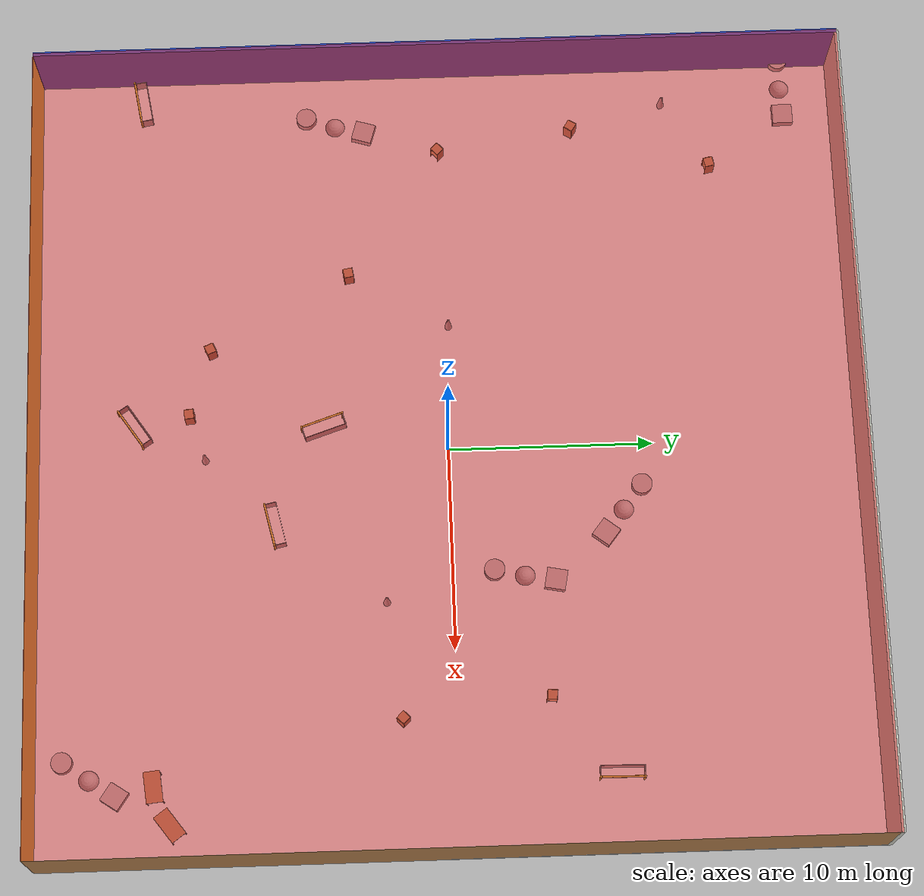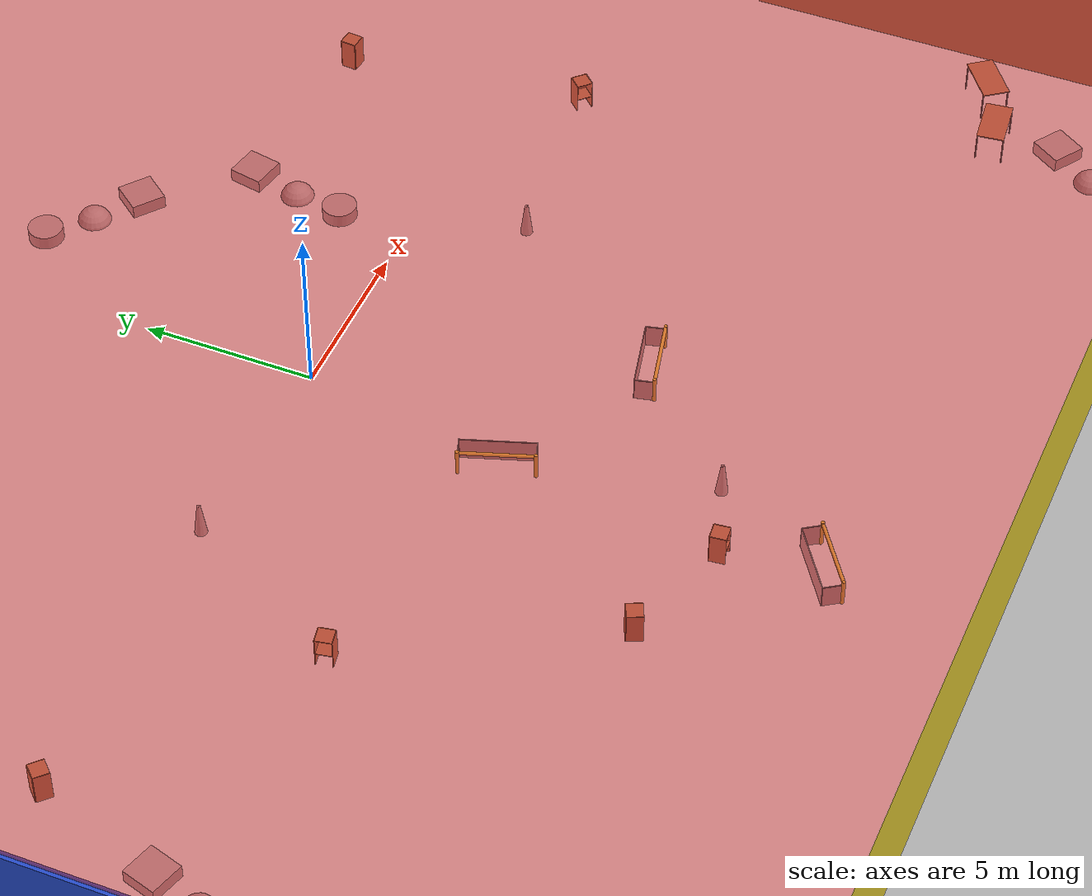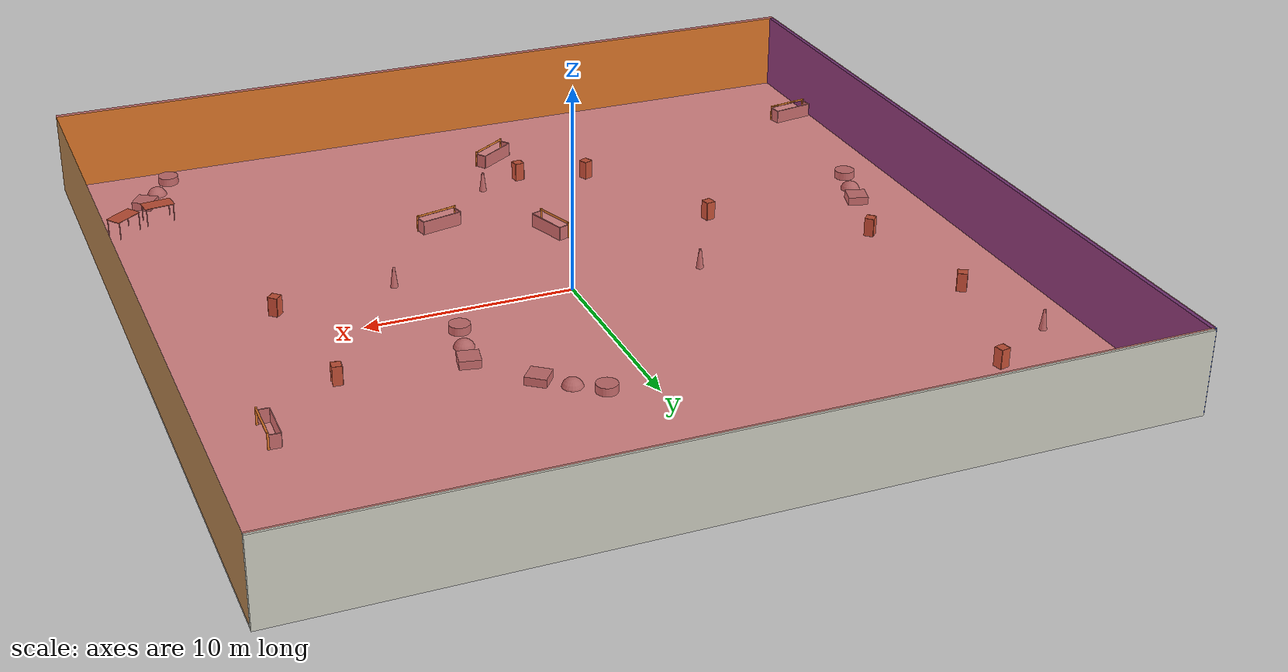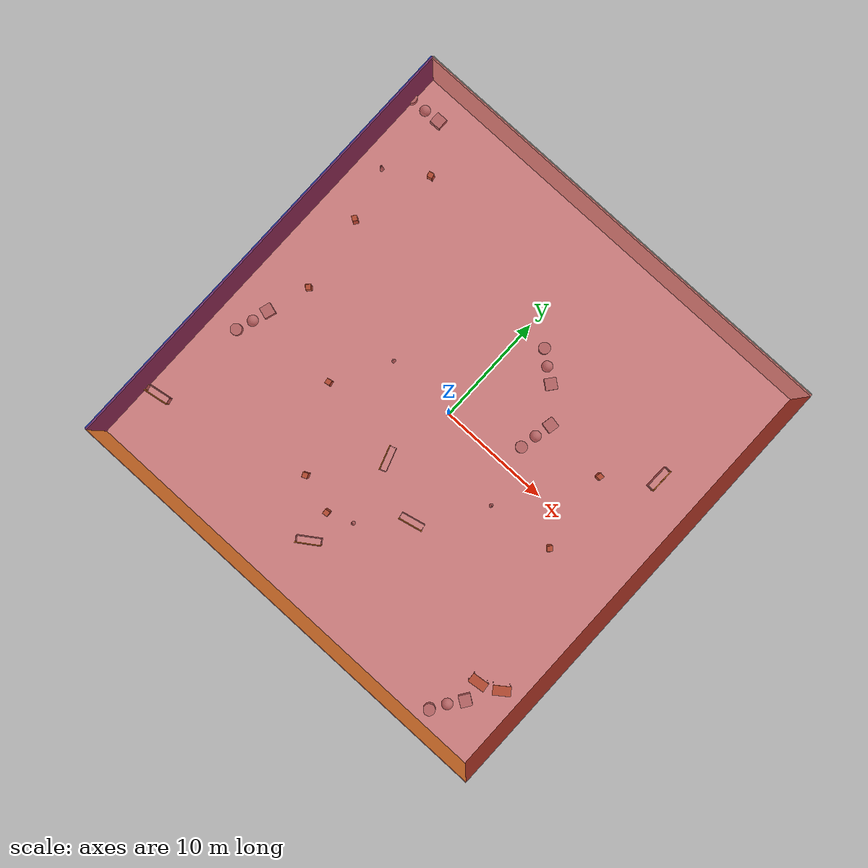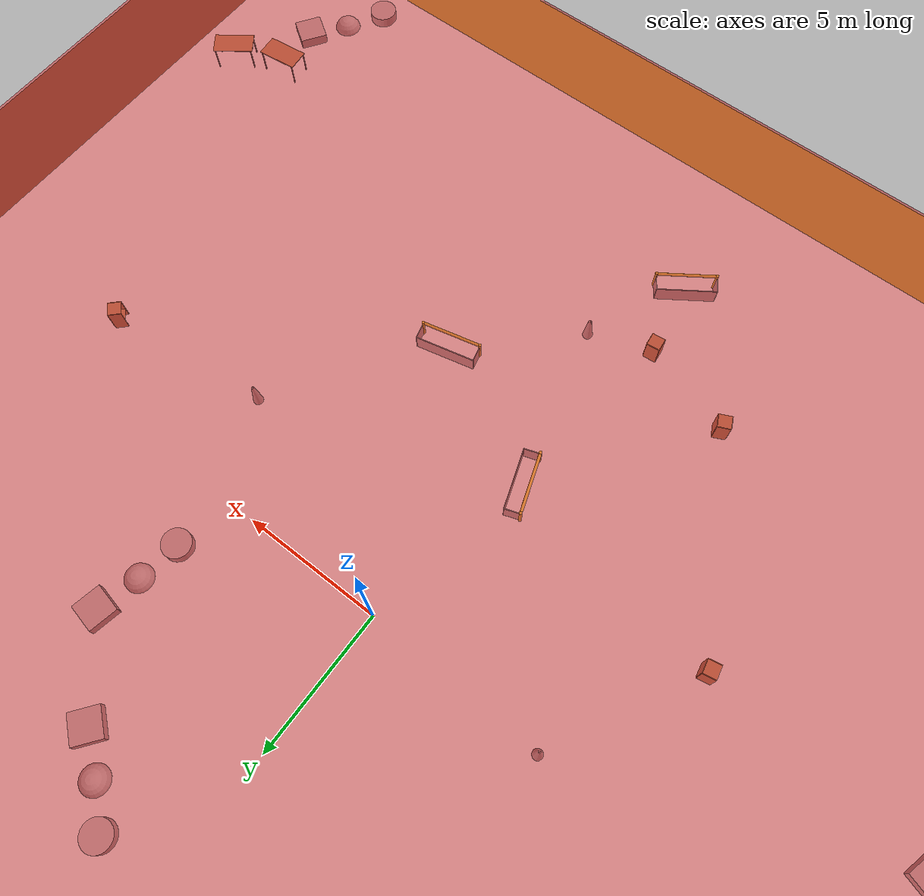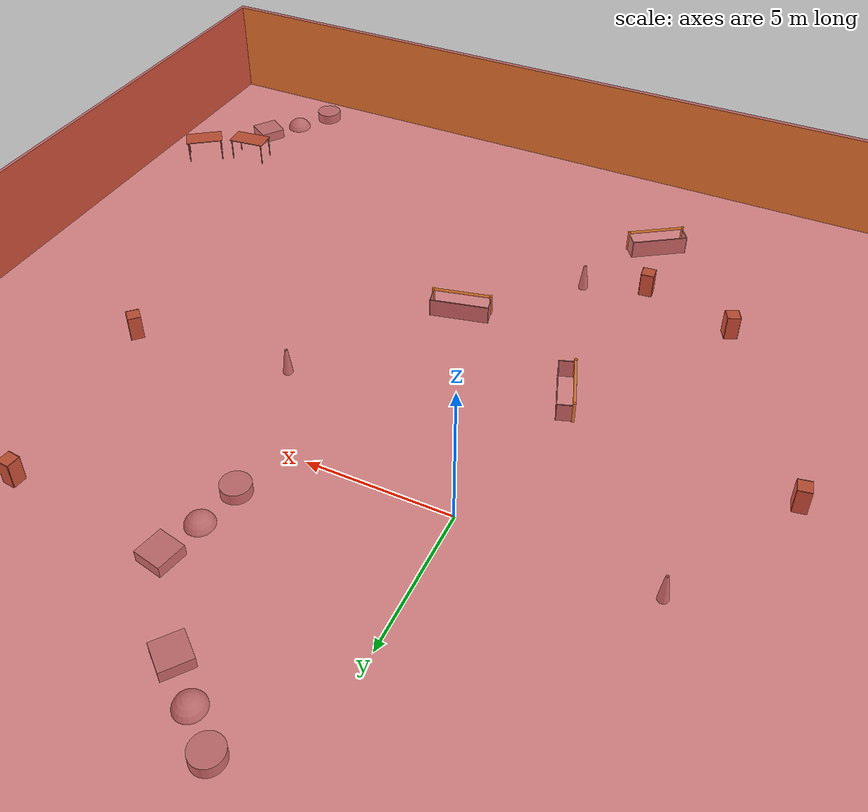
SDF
<sdf version="1.4">
 <world name="default">
  <physics type="ode">
   <max_step_size>0.001</max_step_size>
   <real_time_factor>1</real_time_factor>
   <real_time_update_rate>1000</real_time_update_rate>
   <gravity>0 0 -9.8</gravity>
  </physics>
  <scene><ambient>0.4 0.4 0.4 1</ambient><background>0.7 0.7 0.7 1</background><shadows>1</shadows></scene>
  <model name="Surrounding">
   <static>1</static>
   <link name="Ceiling">
    <collision name="Ceiling_Collision"><geometry><box><size>40 40 0.1</size></box></geometry></collision>
    <visual name="Ceiling_Visual">
     <geometry><box><size>40 40 0.1</size></box></geometry>
     <material>
      <script><uri>file://media/materials/scripts/gazebo.material</uri><name>Gazebo/RedTransparent</name></script>
     </material>
    </visual>
    <pose>0 0 4.05 0 0 0</pose>
   </link>
   <link name="Wall_South">
    <collision name="Wall_South_Collision">
     <geometry><box><size>40 0 4</size></box></geometry>
     <pose>0 0 2 0 -0 0</pose>
    </collision>
    <visual name="Wall_South_Visual">
     <pose>0 0 2 0 -0 0</pose>
     <geometry><box><size>40 0 4</size></box></geometry>
     <material>
      <script><uri>file://media/materials/scripts/gazebo.material</uri><name>Gazebo/ZincYellow</name></script>
     </material>
    </visual>
    <velocity_decay><linear>0</linear><angular>0</angular></velocity_decay>
    <pose>0 -20 0 0 -0 0</pose>
   </link>
   <link name="Wall_East">
    <collision name="Wall_21_Collision">
     <geometry><box><size>40 0 4</size></box></geometry>
     <pose>0 0 2 0 -0 0</pose>
    </collision>
    <visual name="Wall_21_Visual">
     <pose>0 0 2 0 -0 0</pose>
     <geometry><box><size>40 0 4</size></box></geometry>
     <material>
      <script><uri>file://media/materials/scripts/gazebo.material</uri><name>Gazebo/WoodFloor</name></script>
     </material>
    </visual>
    <velocity_decay><linear>0</linear><angular>0</angular></velocity_decay>
    <pose>20 0 0 0 -0 1.5708</pose>
   </link>
   <link name="Wall_North">
    <collision name="Wall_22_Collision">
     <geometry><box><size>40 0.2 4</size></box></geometry>
     <pose>0 0 2 0 -0 0</pose>
    </collision>
    <visual name="Wall_22_Visual">
     <pose>0 0 2 0 -0 0</pose>
     <geometry><box><size>40 0.2 4</size></box></geometry>
     <material>
      <script><uri>file://media/materials/scripts/gazebo.material</uri><name>Gazebo/PaintedWall</name></script>
     </material>
    </visual>
    <velocity_decay><linear>0</linear><angular>0</angular></velocity_decay>
    <pose>0 20 0 0 -0 0</pose>
   </link>
   <link name="Wall_West">
    <collision name="Wall_23_Collision">
     <geometry><box><size>40 0.2 4</size></box></geometry>
     <pose>0 0 2 0 -0 0</pose>
    </collision>
    <visual name="Wall_23_Visual">
     <pose>0 0 2 0 -0 0</pose>
     <geometry><box><size>40 0.2 4</size></box></geometry>
     <material>
      <script><uri>file://media/materials/scripts/gazebo.material</uri><name>Gazebo/BlueLaser</name></script>
     </material>
    </visual>
    <velocity_decay><linear>0</linear><angular>0</angular></velocity_decay>
    <pose>-20 0 0 0 0 -1.5708</pose>
   </link>
   <link name="Ground_link">
    <collision name="collision">
     <pose>0 0 .05 0 -0 0</pose>
     <geometry><box><size>40 40 0.1</size></box></geometry>
    </collision>
    <visual name="visual">
     <pose>0 0 .05 0 -0 0</pose>
     <geometry><box><size>40 40 0.1</size></box></geometry>
     <material>
      <script><uri>file://media/materials/scripts/gazebo.material</uri><name>Gazebo/WhiteGlow</name></script>
     </material>
    </visual>
   </link>
   <static>1</static>
  </model>
  <spherical_coordinates>
   <surface_model>EARTH_WGS84</surface_model>
   <latitude_deg>0</latitude_deg>
   <longitude_deg>0</longitude_deg>
   <elevation>0</elevation>
   <heading_deg>0</heading_deg>
  </spherical_coordinates>
  <light name="lightball_0" type="diffuse">
   <diffuse>0.8 0.8 0.8 1</diffuse>
   <specular>0.2 0.2 0.2 1</specular>
   <attenuation>
    <range>100</range>
    <constant>0.7</constant>
    <linear>0.01</linear>
    <quadratic>0.001</quadratic>
   </attenuation>
   <direction>-0.5 0.1 -0.9</direction>
   <pose>16.2331982939 8.82134884089 3.58650402741 0 0 0</pose>
  </light>
  <light name="lightball_1" type="diffuse">
   <diffuse>0.8 0.8 0.8 1</diffuse>
   <specular>0.2 0.2 0.2 1</specular>
   <attenuation>
    <range>100</range>
    <constant>0.7</constant>
    <linear>0.01</linear>
    <quadratic>0.001</quadratic>
   </attenuation>
   <direction>-0.5 0.1 -0.9</direction>
   <pose>-19.0423789964 -5.8036923309 1.55619270486 0 0 0</pose>
  </light>
  <light name="lightball_2" type="diffuse">
   <diffuse>0.8 0.8 0.8 1</diffuse>
   <specular>0.2 0.2 0.2 1</specular>
   <attenuation>
    <range>100</range>
    <constant>0.7</constant>
    <linear>0.01</linear>
    <quadratic>0.001</quadratic>
   </attenuation>
   <direction>-0.5 0.1 -0.9</direction>
   <pose>1.83686935047 14.155686116 0.729416375774 0 0 0</pose>
  </light>
  <light name="lightball_3" type="diffuse">
   <diffuse>0.8 0.8 0.8 1</diffuse>
   <specular>0.2 0.2 0.2 1</specular>
   <attenuation>
    <range>100</range>
    <constant>0.7</constant>
    <linear>0.01</linear>
    <quadratic>0.001</quadratic>
   </attenuation>
   <direction>-0.5 0.1 -0.9</direction>
   <pose>5.70343289704 2.31511679044 2.3474675816 0 0 0</pose>
  </light>
  <light name="lightball_4" type="diffuse">
   <diffuse>0.8 0.8 0.8 1</diffuse>
   <specular>0.2 0.2 0.2 1</specular>
   <attenuation>
    <range>100</range>
    <constant>0.7</constant>
    <linear>0.01</linear>
    <quadratic>0.001</quadratic>
   </attenuation>
   <direction>-0.5 0.1 -0.9</direction>
   <pose>-1.48559429583 -14.7938974724 3.38108705653 0 0 0</pose>
  </light>
  <light name="lightball_5" type="diffuse">
   <diffuse>0.8 0.8 0.8 1</diffuse>
   <specular>0.2 0.2 0.2 1</specular>
   <attenuation>
    <range>100</range>
    <constant>0.7</constant>
    <linear>0.01</linear>
    <quadratic>0.001</quadratic>
   </attenuation>
   <direction>-0.5 0.1 -0.9</direction>
   <pose>5.93366376017 -10.1948642873 0.56612159946 0 0 0</pose>
  </light>
  <light name="lightball_6" type="diffuse">
   <diffuse>0.8 0.8 0.8 1</diffuse>
   <specular>0.2 0.2 0.2 1</specular>
   <attenuation>
    <range>100</range>
    <constant>0.7</constant>
    <linear>0.01</linear>
    <quadratic>0.001</quadratic>
   </attenuation>
   <direction>-0.5 0.1 -0.9</direction>
   <pose>10.4228973141 9.85975533016 2.29196798313 0 0 0</pose>
  </light>
  <light name="lightball_7" type="diffuse">
   <diffuse>0.8 0.8 0.8 1</diffuse>
   <specular>0.2 0.2 0.2 1</specular>
   <attenuation>
    <range>100</range>
    <constant>0.7</constant>
    <linear>0.01</linear>
    <quadratic>0.001</quadratic>
   </attenuation>
   <direction>-0.5 0.1 -0.9</direction>
   <pose>9.54235159039 -13.2492044285 2.34001517663 0 0 0</pose>
  </light>
  <include>
   <uri>model://robocup_3Dsim_goal</uri>
   <pose>-18.6780701564 -15.1202706325 0 0 0 1.73301093816</pose>
  </include>
  <include>
   <uri>model://textured_shapes</uri>
   <pose>-17.2507434401 -5.19684314362 0 0 0 2.84939603158</pose>
  </include>
  <include><uri>model://cabinet</uri><pose>-16.6000880321 6.68743212599 0 0 0 0.998440170424</pose></include>
  <include>
   <uri>model://construction_cone</uri>
   <pose>-17.9304398462 11.3854844847 0 0 0 2.88174853983</pose>
  </include>
  <include>
   <uri>model://textured_shapes</uri>
   <pose>-18.6320556686 17.4990674104 0 0 0 1.58786556992</pose>
  </include>
  <include><uri>model://cabinet</uri><pose>-15.5398953373 -0.0685951414971 0 0 0 2.36890484402</pose></include>
  <include><uri>model://cabinet</uri><pose>-14.3954609137 13.5647512635 0 0 0 1.78231994406</pose></include>
  <include><uri>model://cabinet</uri><pose>-9.03083384912 -4.67901966383 0 0 0 0.178955939893</pose></include>
  <include><uri>model://cabinet</uri><pose>-5.26535259837 -11.5444588055 0 0 0 1.99786284022</pose></include>
  <include>
   <uri>model://construction_cone</uri>
   <pose>-6.33901640378 0.19528994615 0 0 0 2.03860230615</pose>
  </include>
  <include>
   <uri>model://robocup_3Dsim_goal</uri>
   <pose>-1.35897750572 -15.4970371807 0 0 0 2.16469642985</pose>
  </include>
  <include><uri>model://cabinet</uri><pose>-1.93447763766 -12.6102761493 0 0 0 1.67066431714</pose></include>
  <include>
   <uri>model://robocup_3Dsim_goal</uri>
   <pose>-1.46888332606 -6.13346444444 0 0 0 0.325468051877</pose>
  </include>
  <include>
   <uri>model://construction_cone</uri>
   <pose>0.236127228769 -11.8699976594 0 0 0 1.13828912993</pose>
  </include>
  <include>
   <uri>model://robocup_3Dsim_goal</uri>
   <pose>3.73749859302 -8.76111612866 0 0 0 1.79553586936</pose>
  </include>
  <include>
   <uri>model://textured_shapes</uri>
   <pose>3.34340340988 8.41801171649 0 0 0 0.909629626804</pose>
  </include>
  <include>
   <uri>model://construction_cone</uri>
   <pose>7.61625480885 -3.19791405114 0 0 0 1.81128874806</pose>
  </include>
  <include>
   <uri>model://textured_shapes</uri>
   <pose>6.49531707224 3.49415691961 0 0 0 2.95046448315</pose>
  </include>
  <include><uri>model://cabinet</uri><pose>13.3855732743 -2.55751899975 0 0 0 0.797917649695</pose></include>
  <include><uri>model://cabinet</uri><pose>12.524058888 4.51347243321 0 0 0 3.04012235403</pose></include>
  <include>
   <uri>model://textured_shapes</uri>
   <pose>15.7578700691 -17.4739828599 0 0 0 2.55067727625</pose>
  </include>
  <include><uri>model://table</uri><pose>16.2964601693 -14.3484415881 0 0 0 0.112094790516</pose></include>
  <include>
   <uri>model://robocup_3Dsim_goal</uri>
   <pose>16.5056828271 7.65720204727 0 0 0 3.12360599093</pose>
  </include>
  <include><uri>model://table</uri><pose>18.1212598221 -13.5728214101 0 0 0 0.639225647162</pose></include>
 </world>
</sdf>

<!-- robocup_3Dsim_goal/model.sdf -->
<sdf version="1.5">
  <model name="robocup_3d_goal">
    <static>true</static>
    <link name="left_post">
      <pose>0 1.05 0.45 0 0 0</pose>
      <collision name="collision">
        <geometry>
          <cylinder>
            <radius>0.05</radius>
            <length>0.9</length>
          </cylinder>
        </geometry>
      </collision>
      <visual name="visual">
        <geometry>
          <cylinder>
            <radius>0.05</radius>
            <length>0.9</length>
          </cylinder>
        </geometry>
        <material>
          <script>
            <uri>file://media/materials/scripts/gazebo.material</uri>
            <name>Gazebo/ZincYellow</name>
          </script>
        </material>
      </visual>
    </link>
    <link name="left_support_horiz_lower">
      <pose>0.30 1.05 0.01 0 0 0</pose>
      <collision name="collision">
        <geometry>
          <box>
            <size>0.50 0.02 0.02</size>
          </box>
        </geometry>
      </collision>
      <visual name="visual">
        <geometry>
          <box>
            <size>0.50 0.02 0.02</size>
          </box>
        </geometry>
        <material>
          <script>
            <uri>file://media/materials/scripts/gazebo.material</uri>
            <name>Gazebo/White</name>
          </script>
        </material>
      </visual>
    </link>
    <link name="left_support_horiz_upper">
      <pose>0.30 1.05 0.79 0 0 0</pose>
      <collision name="collision">
        <geometry>
          <box>
            <size>0.50 0.02 0.02</size>
          </box>
        </geometry>
      </collision>
      <visual name="visual">
        <geometry>
          <box>
            <size>0.50 0.02 0.02</size>
          </box>
        </geometry>
        <material>
          <script>
            <uri>file://media/materials/scripts/gazebo.material</uri>
            <name>Gazebo/White</name>
          </script>
        </material>
      </visual>
    </link>
    <link name="left_support_vertical">
      <pose>0.56 1.05 0.4 0 1.5708 0</pose>
      <collision name="collision">
        <geometry>
          <box>
            <size>0.80 0.02 0.02</size>
          </box>
        </geometry>
      </collision>
      <visual name="visual">
        <geometry>
          <box>
            <size>0.80 0.02 0.02</size>
          </box>
        </geometry>
        <material>
          <script>
            <uri>file://media/materials/scripts/gazebo.material</uri>
            <name>Gazebo/White</name>
          </script>
        </material>
      </visual>
    </link>
    <link name="right_support_horiz_lower">
      <pose>0.30 -1.05 0.01 0 0 0</pose>
      <collision name="collision">
        <geometry>
          <box>
            <size>0.50 0.02 0.02</size>
          </box>
        </geometry>
      </collision>
      <visual name="visual">
        <geometry>
          <box>
            <size>0.50 0.02 0.02</size>
          </box>
        </geometry>
        <material>
          <script>
            <uri>file://media/materials/scripts/gazebo.material</uri>
            <name>Gazebo/White</name>
          </script>
        </material>
      </visual>
    </link>
    <link name="right_support_horiz_upper">
      <pose>0.30 -1.05 0.79 0 0 0</pose>
      <collision name="collision">
        <geometry>
          <box>
            <size>0.50 0.02 0.02</size>
          </box>
        </geometry>
      </collision>
      <visual name="visual">
        <geometry>
          <box>
            <size>0.50 0.02 0.02</size>
          </box>
        </geometry>
        <material>
          <script>
            <uri>file://media/materials/scripts/gazebo.material</uri>
            <name>Gazebo/White</name>
          </script>
        </material>
      </visual>
    </link>
    <link name="right_support_vertical">
      <pose>0.56 -1.05 0.4 0 1.5708 0</pose>
      <collision name="collision">
        <geometry>
          <box>
            <size>0.80 0.02 0.02</size>
          </box>
        </geometry>
      </collision>
      <visual name="visual">
        <geometry>
          <box>
            <size>0.80 0.02 0.02</size>
          </box>
        </geometry>
        <material>
          <script>
            <uri>file://media/materials/scripts/gazebo.material</uri>
            <name>Gazebo/White</name>
          </script>
        </material>
      </visual>
    </link>
    <link name="center_support_horiz_lower">
      <pose>0.56 0 0.01 0 1.5708 0</pose>
      <collision name="collision">
        <geometry>
          <box>
            <size>0.02 2.08 0.02</size>
          </box>
        </geometry>
      </collision>
      <visual name="visual">
        <geometry>
          <box>
            <size>0.02 2.08 0.02</size>
          </box>
        </geometry>
        <material>
          <script>
            <uri>file://media/materials/scripts/gazebo.material</uri>
            <name>Gazebo/White</name>
          </script>
        </material>
      </visual>
    </link>
    <link name="center_support_horiz_upper">
      <pose>0.56 0 0.79 0 1.5708 0</pose>
      <collision name="collision">
        <geometry>
          <box>
            <size>0.02 2.08 0.02</size>
          </box>
        </geometry>
      </collision>
      <visual name="visual">
        <geometry>
          <box>
            <size>0.02 2.08 0.02</size>
          </box>
        </geometry>
        <material>
          <script>
            <uri>file://media/materials/scripts/gazebo.material</uri>
            <name>Gazebo/White</name>
          </script>
        </material>
      </visual>
    </link>
    <link name="right_post">
      <pose>0 -1.05 0.45 0 0 0</pose>
      <collision name="collision">
        <geometry>
          <cylinder>
            <radius>0.05</radius>
            <length>0.9</length>
          </cylinder>
        </geometry>
      </collision>
      <visual name="visual">
        <geometry>
          <cylinder>
            <radius>0.05</radius>
            <length>0.9</length>
          </cylinder>
        </geometry>
        <material>
          <script>
            <uri>file://media/materials/scripts/gazebo.material</uri>
            <name>Gazebo/ZincYellow</name>
          </script>
        </material>
      </visual>
    </link>
    <link name="crossbar">
      <pose>0 0 0.85 1.57 1.57 0</pose>
      <collision name="collision">
        <geometry>
          <cylinder>
            <radius>0.05</radius>
            <length>2.0</length>
          </cylinder>
        </geometry>
      </collision>
      <visual name="visual">
        <geometry>
          <cylinder>
            <radius>0.05</radius>
            <length>2.0</length>
          </cylinder>
        </geometry>
        <material>
          <script>
            <uri>file://media/materials/scripts/gazebo.material</uri>
            <name>Gazebo/ZincYellow</name>
          </script>
        </material>
      </visual>
    </link>
    <link name="center_net">
      <pose>0.56 0 0.40 0 0 0</pose>
      <collision name="collision">
        <geometry>
          <box>
            <size>0.01 2.1 0.80</size>
          </box>
        </geometry>
      </collision>
      <visual name="visual">
        <geometry>
          <box>
            <size>0.01 2.1 0.80</size>
          </box>
        </geometry>
        <material>
          <script>
            <uri>model://../model_source/models/robocup09_spl_field/materials/scripts/</uri>
            <uri>model://../model_source/models/robocup09_spl_field/materials/textures/</uri>
            <name>RoboCup/Net</name>
          </script>
        </material>
      </visual>
    </link>
    <link name="left_net">
      <pose>0.30 1.05 0.40 0 0 0</pose>
      <collision name="collision">
        <geometry>
          <box>
            <size>0.50 0.01 0.76</size>
          </box>
        </geometry>
      </collision>
      <visual name="visual">
        <geometry>
          <box>
            <size>0.50 0.01 0.76</size>
          </box>
        </geometry>
        <material>
          <script>
            <uri>model://../model_source/models/robocup09_spl_field/materials/scripts/</uri>
            <uri>model://../model_source/models/robocup09_spl_field/materials/textures/</uri>
            <name>RoboCup/Net</name>
          </script>
        </material>
      </visual>
    </link>
    <link name="right_net">
      <pose>0.30 -1.05 0.40 0 0 0</pose>
      <collision name="collision">
        <geometry>
          <box>
            <size>0.50 0.01 0.76</size>
          </box>
        </geometry>
      </collision>
      <visual name="visual">
        <geometry>
          <box>
            <size>0.50 0.01 0.76</size>
          </box>
        </geometry>
        <material>
          <script>
            <uri>model://../model_source/models/robocup09_spl_field/materials/scripts/</uri>
            <uri>model://../model_source/models/robocup09_spl_field/materials/textures/</uri>
            <name>RoboCup/Net</name>
          </script>
        </material>
      </visual>
    </link>
  </model>
</sdf>

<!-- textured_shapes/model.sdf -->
<sdf version="1.6">
  <model name="textured_shapes">
    <pose>0 0 0.5 0 0 0</pose>
    <link name="box">
      <pose>0 -1.5 0 0 0 0</pose>
      <collision name="collision">
        <geometry>
          <box>
            <size>1 1 1</size>
          </box>
        </geometry>
      </collision>
      <visual name="visual">
        <geometry>
          <box>
            <size>1 1 1</size>
          </box>
        </geometry>
        <material>
          <script>
            <uri>model://../model_source/models/textured_shapes/materials/scripts</uri>
            <uri>model://../model_source/models/textured_shapes/materials/textures</uri>
            <name>TexturedShape/Squares</name>
          </script>
        </material>
      </visual>
    </link>
    <link name="sphere">
      <collision name="collision">
        <geometry>
          <sphere>
            <radius>0.5</radius>
          </sphere>
        </geometry>
      </collision>
      <visual name="visual">
        <geometry>
          <sphere>
            <radius>0.5</radius>
          </sphere>
        </geometry>
        <material>
          <script>
            <uri>model://../model_source/models/textured_shapes/materials/scripts</uri>
            <uri>model://../model_source/models/textured_shapes/materials/textures</uri>
            <name>TexturedShape/Squares</name>
          </script>
        </material>
      </visual>
    </link>
    <link name="cylinder">
      <pose>0 1.5 0 0 0 0</pose>
      <collision name="collision">
        <geometry>
          <cylinder>
            <radius>0.5</radius>
            <length>1</length>
          </cylinder>
        </geometry>
      </collision>
      <visual name="visual">
        <geometry>
          <cylinder>
            <radius>0.5</radius>
            <length>1</length>
          </cylinder>
        </geometry>
        <material>
          <script>
            <uri>model://../model_source/models/textured_shapes/materials/scripts</uri>
            <uri>model://../model_source/models/textured_shapes/materials/textures</uri>
            <name>TexturedShape/Squares</name>
          </script>
        </material>
      </visual>
    </link>
  </model>
</sdf>

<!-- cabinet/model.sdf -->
<sdf version="1.5">
  <model name="cabinet">
    <static>true</static>
    <link name="cabinet_bottom_plate">
      <inertial>
        <pose>0 0 -1 0 0 0</pose>
        <inertia>
          <ixx>2.050000</ixx>
          <ixy>0</ixy>
          <ixz>0</ixz>
          <iyy>2.050000</iyy>
          <iyz>0</iyz>
          <izz>2.050000</izz>
        </inertia>
        <mass>25.000000</mass>
      </inertial>
      <collision name="cabinet_bottom_plate_geom">
        <pose>0 0 0.010000 0 0 0</pose>
        <geometry>
          <box>
            <size>0.450000 0.450000 0.020000</size>
          </box>
        </geometry>
      </collision>
      <visual name="cabinet_bottom_plate_geom_visual">
        <pose>0 0 0.010000 0 0 0</pose>
        <geometry>
          <box>
            <size>0.450000 0.450000 0.020000</size>
          </box>
        </geometry>
        <material>
          <script>
            <uri>model://media/materials/scripts/gazebo.material</uri>
            <name>Gazebo/Wood</name>
          </script>
        </material>
      </visual>
      <collision name="cabinet_bottom_plate_geom_cabinet_back_plate">
        <pose>0.235000 0 0.510000 0 0 0</pose>
        <geometry>
          <box>
            <size>0.020000 0.450000 1.020000</size>
          </box>
        </geometry>
      </collision>
      <visual name="cabinet_bottom_plate_geom_cabinet_back_plate_visual">
        <pose>0.235000 0 0.510000 0 0 0</pose>
        <geometry>
          <box>
            <size>0.020000 0.450000 1.020000</size>
          </box>
        </geometry>
        <material>
          <script>
            <uri>model://media/materials/scripts/gazebo.material</uri>
            <name>Gazebo/Wood</name>
          </script>
        </material>
      </visual>
      <collision name="cabinet_bottom_plate_geom_cabinet_left_plate">
        <pose>0 0.235000 0.510000 0 0 0</pose>
        <geometry>
          <box>
            <size>0.450000 0.020000 1.020000</size>
          </box>
        </geometry>
      </collision>
      <visual name="cabinet_bottom_plate_geom_cabinet_left_plate_visual">
        <pose>0 0.235000 0.510000 0 0 0</pose>
        <geometry>
          <box>
            <size>0.450000 0.020000 1.020000</size>
          </box>
        </geometry>
        <material>
          <script>
            <uri>model://media/materials/scripts/gazebo.material</uri>
            <name>Gazebo/Wood</name>
          </script>
        </material>
      </visual>
      <collision name="cabinet_bottom_plate_geom_cabinet_middle_plate">
        <pose>0 0 0.510000 0 0 0</pose>
        <geometry>
          <box>
            <size>0.450000 0.450000 0.020000</size>
          </box>
        </geometry>
      </collision>
      <visual name="cabinet_bottom_plate_geom_cabinet_middle_plate_visual">
        <pose>0 0 0.510000 0 0 0</pose>
        <geometry>
          <box>
            <size>0.450000 0.450000 0.020000</size>
          </box>
        </geometry>
        <material>
          <script>
            <uri>model://media/materials/scripts/gazebo.material</uri>
            <name>Gazebo/Wood</name>
          </script>
        </material>
      </visual>
      <collision name="cabinet_bottom_plate_geom_cabinet_right_plate">
        <pose>0 -0.235000 0.510000 0 0 0</pose>
        <geometry>
          <box>
            <size>0.450000 0.020000 1.020000</size>
          </box>
        </geometry>
      </collision>
      <visual name="cabinet_bottom_plate_geom_cabinet_right_plate_visual">
        <pose>0 -0.235000 0.510000 0 0 0</pose>
        <geometry>
          <box>
            <size>0.450000 0.020000 1.020000</size>
          </box>
        </geometry>
        <material>
          <script>
            <uri>model://media/materials/scripts/gazebo.material</uri>
            <name>Gazebo/Wood</name>
          </script>
        </material>
      </visual>
      <collision name="cabinet_bottom_plate_geom_cabinet_top_plate">
        <pose>0 0 1.010000 0 0 0</pose>
        <geometry>
          <box>
            <size>0.450000 0.450000 0.020000</size>
          </box>
        </geometry>
      </collision>
      <visual name="cabinet_bottom_plate_geom_cabinet_top_plate_visual">
        <pose>0 0 1.010000 0 0 0</pose>
        <geometry>
          <box>
            <size>0.450000 0.450000 0.020000</size>
          </box>
        </geometry>
        <material>
          <script>
            <uri>model://media/materials/scripts/gazebo.material</uri>
            <name>Gazebo/Wood</name>
          </script>
        </material>
      </visual>
    </link>
  </model>
</sdf>

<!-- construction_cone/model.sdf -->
<sdf version="1.5">
  <model name="Construction Cone">
    <link name="link">
      <collision name="collision">
        <geometry>
          <mesh>
            <scale>10 10 10</scale>
            <uri>file://isr-testbed/construction_cone/meshes/construction_cone.dae</uri>
          </mesh>
        </geometry>
      </collision>
      <visual name="visual">
        <geometry>
          <mesh>
            <scale>10 10 10</scale>
            <uri>file://isr-testbed/construction_cone/meshes/construction_cone.dae</uri>
          </mesh>
        </geometry>
      </visual>
    </link>
  </model>
</sdf>

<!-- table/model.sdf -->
<sdf version="1.5">
  <model name="table">
    <static>true</static>
    <link name="link">
      <collision name="surface">
        <pose>0 0 1.0 0 0 0</pose>
        <geometry>
          <box>
            <size>1.5 0.8 0.03</size>
          </box>
        </geometry>
        <surface>
          <friction>
            <ode>
              <mu>0.6</mu>
              <mu2>0.6</mu2>
            </ode>
          </friction>
        </surface>
      </collision>
      <visual name="visual1">
        <pose>0 0 1.0 0 0 0</pose>
        <geometry>
          <box>
            <size>1.5 0.8 0.03</size>
          </box>
        </geometry>
        <material>
          <script>
            <uri>model://media/materials/scripts/gazebo.material</uri>
            <name>Gazebo/Wood</name>
          </script>
        </material>
      </visual>
      <collision name="front_left_leg">
        <pose>0.68 0.38 0.5 0 0 0</pose>
        <geometry>
          <cylinder>
            <radius>0.02</radius>
            <length>1.0</length>
          </cylinder>
        </geometry>
      </collision>
      <visual name="front_left_leg">
        <pose>0.68 0.38 0.5 0 0 0</pose>
        <geometry>
          <cylinder>
            <radius>0.02</radius>
            <length>1.0</length>
          </cylinder>
        </geometry>
        <material>
          <script>
            <uri>model://media/materials/scripts/gazebo.material</uri>
            <name>Gazebo/Grey</name>
          </script>
        </material>
      </visual>
      <collision name="front_right_leg">
        <pose>0.68 -0.38 0.5 0 0 0</pose>
        <geometry>
          <cylinder>
            <radius>0.02</radius>
            <length>1.0</length>
          </cylinder>
        </geometry>
      </collision>
      <visual name="front_right_leg">
        <pose>0.68 -0.38 0.5 0 0 0</pose>
        <geometry>
          <cylinder>
            <radius>0.02</radius>
            <length>1.0</length>
          </cylinder>
        </geometry>
        <material>
          <script>
            <uri>model://media/materials/scripts/gazebo.material</uri>
            <name>Gazebo/Grey</name>
          </script>
        </material>
      </visual>
      <collision name="back_right_leg">
        <pose>-0.68 -0.38 0.5 0 0 0</pose>
        <geometry>
          <cylinder>
            <radius>0.02</radius>
            <length>1.0</length>
          </cylinder>
        </geometry>
      </collision>
      <visual name="back_right_leg">
        <pose>-0.68 -0.38 0.5 0 0 0</pose>
        <geometry>
          <cylinder>
            <radius>0.02</radius>
            <length>1.0</length>
          </cylinder>
        </geometry>
        <material>
          <script>
            <uri>model://media/materials/scripts/gazebo.material</uri>
            <name>Gazebo/Grey</name>
          </script>
        </material>
      </visual>
      <collision name="back_left_leg">
        <pose>-0.68 0.38 0.5 0 0 0</pose>
        <geometry>
          <cylinder>
            <radius>0.02</radius>
            <length>1.0</length>
          </cylinder>
        </geometry>
      </collision>
      <visual name="back_left_leg">
        <pose>-0.68 0.38 0.5 0 0 0</pose>
        <geometry>
          <cylinder>
            <radius>0.02</radius>
            <length>1.0</length>
          </cylinder>
        </geometry>
        <material>
          <script>
            <uri>model://media/materials/scripts/gazebo.material</uri>
            <name>Gazebo/Grey</name>
          </script>
        </material>
      </visual>
    </link>
  </model>
</sdf>
